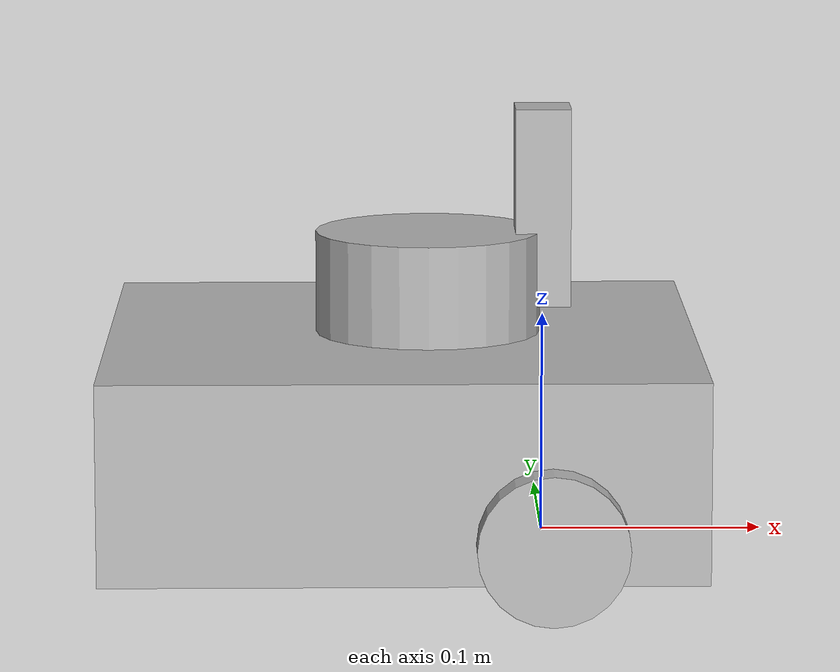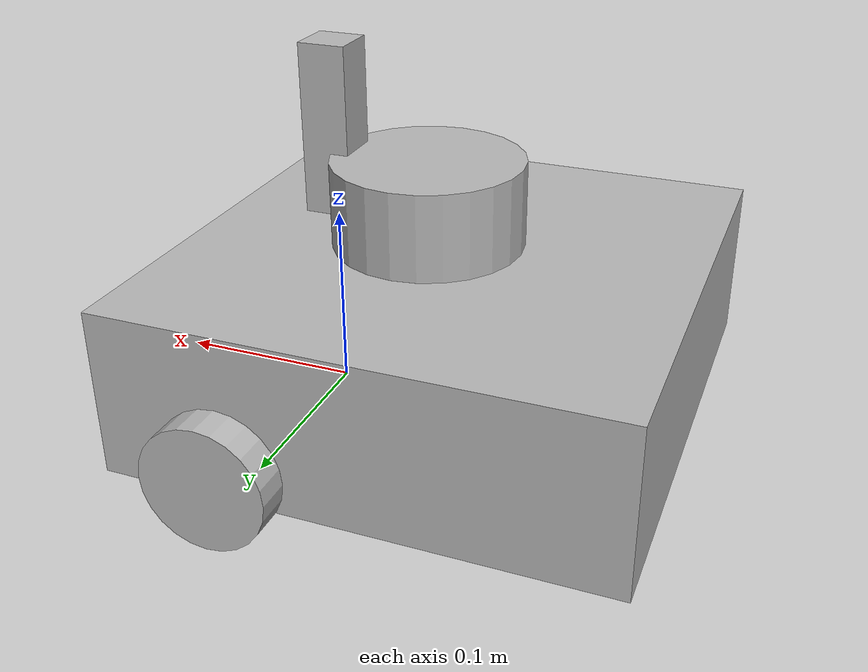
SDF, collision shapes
<?xml version="1.0" ?>
<sdf version="1.5">
  <model name="turtlebot3_waffle_rgbd">
  <pose>0.0 0.0 0.0 0.0 0.0 0.0</pose>

    <link name="base_footprint"/>

    <link name="base_link">

      <inertial>
        <pose>-0.064 0 0.048 0 0 0</pose>
        <inertia>
          <ixx>4.2111447e-02</ixx>
          <ixy>0</ixy>
          <ixz>0</ixz>
          <iyy>4.2111447e-02</iyy>
          <iyz>0</iyz>
          <izz>7.5254874e-02</izz>
        </inertia>
        <mass>1.3729096e+00</mass>
      </inertial>

      <collision name="base_collision">
        <pose>-0.064 0 0.048 0 0 0</pose>
        <geometry>
          <box>
            <size>0.265 0.265 0.089</size>
          </box>
        </geometry>
      </collision>

      <visual name="base_visual">
        <pose>-0.064 0 0 0 0 0</pose>
        <geometry>
          <mesh>
            <uri>model://turtlebot3_waffle/meshes/waffle_base.dae</uri>
            <scale>0.001 0.001 0.001</scale>
          </mesh>
        </geometry>
      </visual>
    </link>

    <link name="imu_link">
      <sensor name="tb3_imu" type="imu">
        <always_on>true</always_on>
        <update_rate>200</update_rate>
        <imu>
          <angular_velocity>
            <x>
              <noise type="gaussian">
                <mean>0.0</mean>
                <stddev>2e-4</stddev>
              </noise>
            </x>
            <y>
              <noise type="gaussian">
                <mean>0.0</mean>
                <stddev>2e-4</stddev>
              </noise>
            </y>
            <z>
              <noise type="gaussian">
                <mean>0.0</mean>
                <stddev>2e-4</stddev>
              </noise>
            </z>
          </angular_velocity>
          <linear_acceleration>
            <x>
              <noise type="gaussian">
                <mean>0.0</mean>
                <stddev>1.7e-2</stddev>
              </noise>
            </x>
            <y>
              <noise type="gaussian">
                <mean>0.0</mean>
                <stddev>1.7e-2</stddev>
              </noise>
            </y>
            <z>
              <noise type="gaussian">
                <mean>0.0</mean>
                <stddev>1.7e-2</stddev>
              </noise>
            </z>
          </linear_acceleration>
        </imu>
        <plugin name="turtlebot3_imu" filename="libgazebo_ros_imu_sensor.so">
          <ros>
            <remapping>~/out:=imu</remapping>
          </ros>
        </plugin>
      </sensor>
    </link>

    <link name="base_scan">
      <inertial>
        <pose>-0.052 0 0.111 0 0 0</pose>
        <inertia>
          <ixx>0.001</ixx>
          <ixy>0.000</ixy>
          <ixz>0.000</ixz>
          <iyy>0.001</iyy>
          <iyz>0.000</iyz>
          <izz>0.001</izz>
        </inertia>
        <mass>0.114</mass>
      </inertial>

      <collision name="lidar_sensor_collision">
        <pose>-0.052 0 0.111 0 0 0</pose>
        <geometry>
          <cylinder>
            <radius>0.0508</radius>
            <length>0.055</length>
          </cylinder>
        </geometry>
      </collision>

      <visual name="lidar_sensor_visual">
        <pose>-0.064 0 0.121 0 0 0</pose>
        <geometry>
          <mesh>
            <uri>model://turtlebot3_waffle/meshes/lds.dae</uri>
            <scale>0.001 0.001 0.001</scale>
          </mesh>
        </geometry>
      </visual>

      <sensor name="hls_lfcd_lds" type="ray">
        <always_on>true</always_on>
        <visualize>true</visualize>
        <pose>-0.064 0 0.121 0 0 0</pose>
        <update_rate>5</update_rate>
        <ray>
          <scan>
            <horizontal>
              <samples>360</samples>
              <resolution>1.000000</resolution>
              <min_angle>0.000000</min_angle>
              <max_angle>6.280000</max_angle>
            </horizontal>
          </scan>
          <range>
            <min>0.120000</min>
            <max>3.5</max>
            <resolution>0.015000</resolution>
          </range>
          <noise>
            <type>gaussian</type>
            <mean>0.0</mean>
            <stddev>0.01</stddev>
          </noise>
        </ray>
        <plugin name="turtlebot3_laserscan" filename="libgazebo_ros_ray_sensor.so">
          <ros>
            <remapping>~/out:=scan</remapping>
          </ros>
          <output_type>sensor_msgs/LaserScan</output_type>
          <frame_name>base_scan</frame_name>
        </plugin>
      </sensor>
    </link>

    <link name="wheel_left_link">

      <inertial>
        <pose>0.0 0.144 0.023 -1.57 0 0</pose>
        <inertia>
          <ixx>1.1175580e-05</ixx>
          <ixy>-4.2369783e-11</ixy>
          <ixz>-5.9381719e-09</ixz>
          <iyy>1.1192413e-05</iyy>
          <iyz>-1.4400107e-11</iyz>
          <izz>2.0712558e-05</izz>
        </inertia>
        <mass>0.1</mass>
      </inertial>

      <collision name="wheel_left_collision">
        <pose>0.0 0.144 0.023 -1.57 0 0</pose>
        <geometry>
          <cylinder>
            <radius>0.033</radius>
            <length>0.018</length>
          </cylinder>
        </geometry>
        <surface>
          <!-- This friction pamareter don't contain reliable data!! -->
          <friction>
            <ode>
              <mu>100000.0</mu>
              <mu2>100000.0</mu2>
              <fdir1>0 0 0</fdir1>
              <slip1>0.0</slip1>
              <slip2>0.0</slip2>
            </ode>
          </friction>
          <contact>
            <ode>
              <soft_cfm>0</soft_cfm>
              <soft_erp>0.2</soft_erp>
              <kp>1e+5</kp>
              <kd>1</kd>
              <max_vel>0.01</max_vel>
              <min_depth>0.001</min_depth>
            </ode>
          </contact>
        </surface>
      </collision>

      <visual name="wheel_left_visual">
        <pose>0.0 0.144 0.023 0 0 0</pose>
        <geometry>
          <mesh>
            <uri>model://turtlebot3_waffle/meshes/tire.dae</uri>
            <scale>0.001 0.001 0.001</scale>
          </mesh>
        </geometry>
      </visual>
    </link>

    <link name="wheel_right_link">

      <inertial>
        <pose>0.0 -0.144 0.023 -1.57 0 0</pose>
        <inertia>
          <ixx>1.1175580e-05</ixx>
          <ixy>-4.2369783e-11</ixy>
          <ixz>-5.9381719e-09</ixz>
          <iyy>1.1192413e-05</iyy>
          <iyz>-1.4400107e-11</iyz>
          <izz>2.0712558e-05</izz>
        </inertia>
        <mass>0.1</mass>
      </inertial>

      <collision name="wheel_right_collision">
        <pose>0.0 -0.144 0.023 -1.57 0 0</pose>
        <geometry>
          <cylinder>
            <radius>0.033</radius>
            <length>0.018</length>
          </cylinder>
        </geometry>
        <surface>
          <!-- This friction pamareter don't contain reliable data!! -->
          <friction>
            <ode>
              <mu>100000.0</mu>
              <mu2>100000.0</mu2>
              <fdir1>0 0 0</fdir1>
              <slip1>0.0</slip1>
              <slip2>0.0</slip2>
            </ode>
          </friction>
          <contact>
            <ode>
              <soft_cfm>0</soft_cfm>
              <soft_erp>0.2</soft_erp>
              <kp>1e+5</kp>
              <kd>1</kd>
              <max_vel>0.01</max_vel>
              <min_depth>0.001</min_depth>
            </ode>
          </contact>
        </surface>
      </collision>

      <visual name="wheel_right_visual">
        <pose>0.0 -0.144 0.023 0 0 0</pose>
        <geometry>
          <mesh>
            <uri>model://turtlebot3_waffle/meshes/tire.dae</uri>
            <scale>0.001 0.001 0.001</scale>
          </mesh>
        </geometry>
      </visual>
    </link>

    <link name='caster_back_right_link'>
      <pose>-0.177 -0.064 -0.004 -1.57 0 0</pose>
      <inertial>
        <mass>0.001</mass>
        <inertia>
          <ixx>0.00001</ixx>
          <ixy>0.000</ixy>
          <ixz>0.000</ixz>
          <iyy>0.00001</iyy>
          <iyz>0.000</iyz>
          <izz>0.00001</izz>
        </inertia>
      </inertial>
      <collision name='collision'>
        <geometry>
          <sphere>
            <radius>0.005000</radius>
          </sphere>
        </geometry>
        <surface>
          <contact>
            <ode>
              <soft_cfm>0</soft_cfm>
              <soft_erp>0.2</soft_erp>
              <kp>1e+5</kp>
              <kd>1</kd>
              <max_vel>0.01</max_vel>
              <min_depth>0.001</min_depth>
            </ode>
          </contact>
        </surface>
      </collision>
    </link>

    <link name='caster_back_left_link'>
      <pose>-0.177 0.064 -0.004 -1.57 0 0</pose>
      <inertial>
        <mass>0.001</mass>
        <inertia>
          <ixx>0.00001</ixx>
          <ixy>0.000</ixy>
          <ixz>0.000</ixz>
          <iyy>0.00001</iyy>
          <iyz>0.000</iyz>
          <izz>0.00001</izz>
        </inertia>
      </inertial>
      <collision name='collision'>
        <geometry>
          <sphere>
            <radius>0.005000</radius>
          </sphere>
        </geometry>
        <surface>
          <contact>
            <ode>
              <soft_cfm>0</soft_cfm>
              <soft_erp>0.2</soft_erp>
              <kp>1e+5</kp>
              <kd>1</kd>
              <max_vel>0.01</max_vel>
              <min_depth>0.001</min_depth>
            </ode>
          </contact>
        </surface>
      </collision>
    </link>

    <link name="realsense_link">
      <pose>0.0 0 0.15 0 0 0</pose>
      <visual name="realsense_link_visual">
        <pose>0 0 0 -1.57 0 -1.57</pose>
        <geometry>
          <mesh>
            <uri>model://chiconybot/meshes/d435.dae</uri>
          </mesh>
        </geometry>
      </visual>
      <collision name="realsense_link_collision">
        <pose>0 0 0 -1.57 0 -1.57</pose>
        <geometry>
          <box>
            <size>0.02505 0.090 0.025</size>
          </box>
        </geometry>
      </collision>
      <inertial>
        <pose>0 0 0 0 0 0</pose>
        <inertia>
          <ixx>0.001</ixx>
          <ixy>0.000</ixy>
          <ixz>0.000</ixz>
          <iyy>0.001</iyy>
          <iyz>0.000</iyz>
          <izz>0.001</izz>
        </inertia>
        <mass>0.564</mass>
      </inertial>

      <sensor name="cameradepth" type="depth">
        <camera name="camera">
          <horizontal_fov>1.57</horizontal_fov>
          <image>
            <width>1280</width>
            <height>720</height>
          </image>
          <clip>
            <near>0.1</near>
            <far>100</far>
          </clip>
          <noise>
            <type>gaussian</type>
            <mean>0.0</mean>
            <stddev>0.100</stddev>
          </noise>
        </camera>
        <always_on>1</always_on>
        <update_rate>30</update_rate>
        <visualize>0</visualize>
      </sensor>
      <sensor name="cameracolor" type="camera">
        <camera name="camera">
          <horizontal_fov>1.57</horizontal_fov>
          <image>
            <width>1280</width>
            <height>720</height>
            <format>RGB_INT8</format>
          </image>
          <clip>
            <near>0.1</near>
            <far>100</far>
          </clip>
          <noise>
            <type>gaussian</type>
            <mean>0.0</mean>
            <stddev>0.007</stddev>
          </noise>
        </camera>
        <always_on>1</always_on>
        <update_rate>30</update_rate>
        <visualize>1</visualize>
      </sensor>
      <sensor name="cameraired1" type="camera">
        <camera name="camera">
          <horizontal_fov>1.57</horizontal_fov>
          <image>
            <width>1280</width>
            <height>720</height>
            <format>L_INT8</format>
          </image>
          <clip>
            <near>0.1</near>
            <far>100</far>
          </clip>
          <noise>
            <type>gaussian</type>
            <mean>0.0</mean>
            <stddev>0.05</stddev>
          </noise>
        </camera>
        <always_on>1</always_on>
        <update_rate>1</update_rate>
        <visualize>0</visualize>
      </sensor>
      <sensor name="cameraired2" type="camera">
        <camera name="camera">
          <horizontal_fov>1.57</horizontal_fov>
          <image>
            <width>1280</width>
            <height>720</height>
            <format>L_INT8</format>
          </image>
          <clip>
            <near>0.1</near>
            <far>100</far>
          </clip>
          <noise>
            <type>gaussian</type>
            <mean>0.0</mean>
            <stddev>0.05</stddev>
          </noise>
        </camera>
        <always_on>1</always_on>
        <update_rate>1</update_rate>
        <visualize>0</visualize>
      </sensor>
    </link>

    <joint name="realsense_joint" type="fixed">
      <parent>base_link</parent>
      <child>realsense_link</child>
      <pose>0.4 0 0.4 0 0 0</pose>
    </joint>

    <plugin name="camera" filename="librealsense_gazebo_plugin.so">
      <prefix>camera</prefix>
      <depthUpdateRate>30.0</depthUpdateRate>
      <colorUpdateRate>30.0</colorUpdateRate>
      <infraredUpdateRate>1.0</infraredUpdateRate>
      <depthTopicName>camera/depth_registered/image_raw</depthTopicName>
      <depthCameraInfoTopicName>camera/depth_registered/camera_info</depthCameraInfoTopicName>
      <colorTopicName>camera/rgb/image_raw</colorTopicName>
      <colorCameraInfoTopicName>/camera/rgb/camera_info</colorCameraInfoTopicName>
      <infrared1TopicName>infra1/image_raw</infrared1TopicName>
      <infrared1CameraInfoTopicName>infra1/camera_info</infrared1CameraInfoTopicName>
      <infrared2TopicName>infra2/image_raw</infrared2TopicName>
      <infrared2CameraInfoTopicName>infra2/camera_info</infrared2CameraInfoTopicName>
      <colorOpticalframeName>camera_color_optical_frame</colorOpticalframeName>
      <depthOpticalframeName>camera_depth_optical_frame</depthOpticalframeName>
      <infrared1OpticalframeName>camera_left_ir_optical_frame</infrared1OpticalframeName>
      <infrared2OpticalframeName>camera_right_ir_optical_frame</infrared2OpticalframeName>
      <rangeMinDepth>0.3</rangeMinDepth>
      <rangeMaxDepth>3.0</rangeMaxDepth>
      <pointCloud>true</pointCloud>
      <pointCloudTopicName>depth/color/points</pointCloudTopicName>
      <pointCloudCutoff>0.3</pointCloudCutoff>
    </plugin>

    <joint name="base_joint" type="fixed">
      <parent>base_footprint</parent>
      <child>base_link</child>
      <pose>0.0 0.0 0.010 0 0 0</pose>
    </joint>

    <joint name="wheel_left_joint" type="revolute">
      <parent>base_link</parent>
      <child>wheel_left_link</child>
      <pose>0.0 0.144 0.023 -1.57 0 0</pose>
      <axis>
        <xyz>0 0 1</xyz>
      </axis>
    </joint>

    <joint name="wheel_right_joint" type="revolute">
      <parent>base_link</parent>
      <child>wheel_right_link</child>
      <pose>0.0 -0.144 0.023 -1.57 0 0</pose>
      <axis>
        <xyz>0 0 1</xyz>
      </axis>
    </joint>

    <joint name='caster_back_right_joint' type='ball'>
      <parent>base_link</parent>
      <child>caster_back_right_link</child>
    </joint>

    <joint name='caster_back_left_joint' type='ball'>
      <parent>base_link</parent>
      <child>caster_back_left_link</child>
    </joint>

    <joint name="imu_joint" type="fixed">
      <parent>base_link</parent>
      <child>imu_link</child>
      <pose>-0.032 0 0.068 0 0 0</pose>
      <axis>
        <xyz>0 0 1</xyz>
      </axis>
    </joint>

    <joint name="lidar_joint" type="fixed">
      <parent>base_link</parent>
      <child>base_scan</child>
      <pose>-0.064 0 0.121 0 0 0</pose>
      <axis>
        <xyz>0 0 1</xyz>
      </axis>
    </joint>

    <joint name="camera_joint" type="fixed">
      <parent>base_link</parent>
      <child>camera_link</child>
      <pose>0.064 -0.065 0.094 0 0 0</pose>
      <axis>
        <xyz>0 0 1</xyz>
      </axis>
    </joint>

    <joint name="camera_rgb_joint" type="fixed">
      <parent>camera_link</parent>
      <child>camera_rgb_frame</child>
      <pose>0.005 0.018 0.013 0 0 0</pose>
      <axis>
        <xyz>0 0 1</xyz>
      </axis>
    </joint>

    <plugin name="turtlebot3_diff_drive" filename="libgazebo_ros_diff_drive.so">

      <ros>
      </ros>

      <update_rate>30</update_rate>

      <!-- wheels -->
      <left_joint>wheel_left_joint</left_joint>
      <right_joint>wheel_right_joint</right_joint>

      <!-- kinematics -->
      <wheel_separation>0.287</wheel_separation>
      <wheel_diameter>0.066</wheel_diameter>

      <!-- limits -->
      <max_wheel_torque>20</max_wheel_torque>
      <max_wheel_acceleration>1.0</max_wheel_acceleration>

      <command_topic>cmd_vel</command_topic>

      <!-- output -->
      <publish_odom>true</publish_odom>
      <publish_odom_tf>true</publish_odom_tf>
      <publish_wheel_tf>false</publish_wheel_tf>

      <odometry_topic>odom</odometry_topic>
      <odometry_frame>odom</odometry_frame>
      <robot_base_frame>base_footprint</robot_base_frame>

    </plugin>

    <plugin name="turtlebot3_joint_state" filename="libgazebo_ros_joint_state_publisher.so">
      <ros>
        <remapping>~/out:=joint_states</remapping>
      </ros>
      <update_rate>30</update_rate>
      <joint_name>wheel_left_joint</joint_name>
      <joint_name>wheel_right_joint</joint_name>
    </plugin>

  </model>
</sdf>
